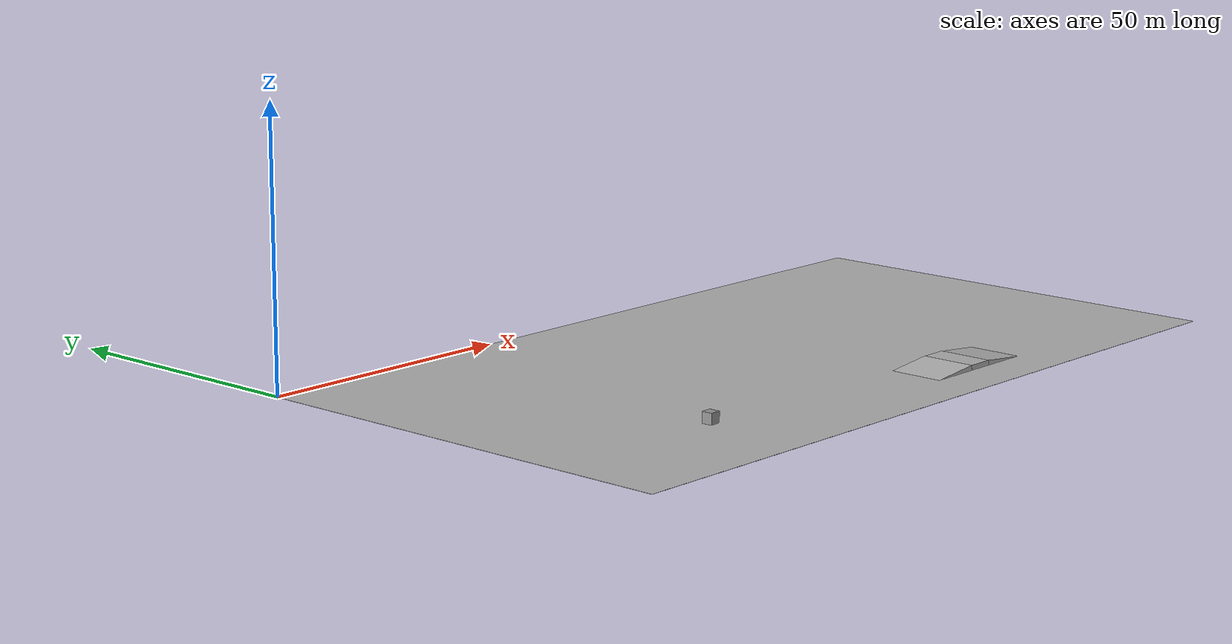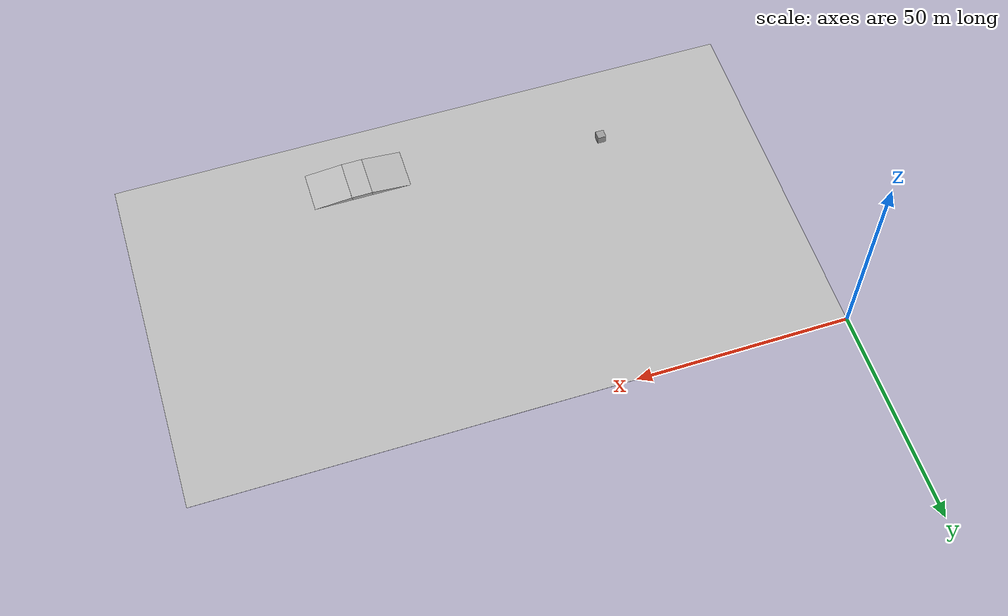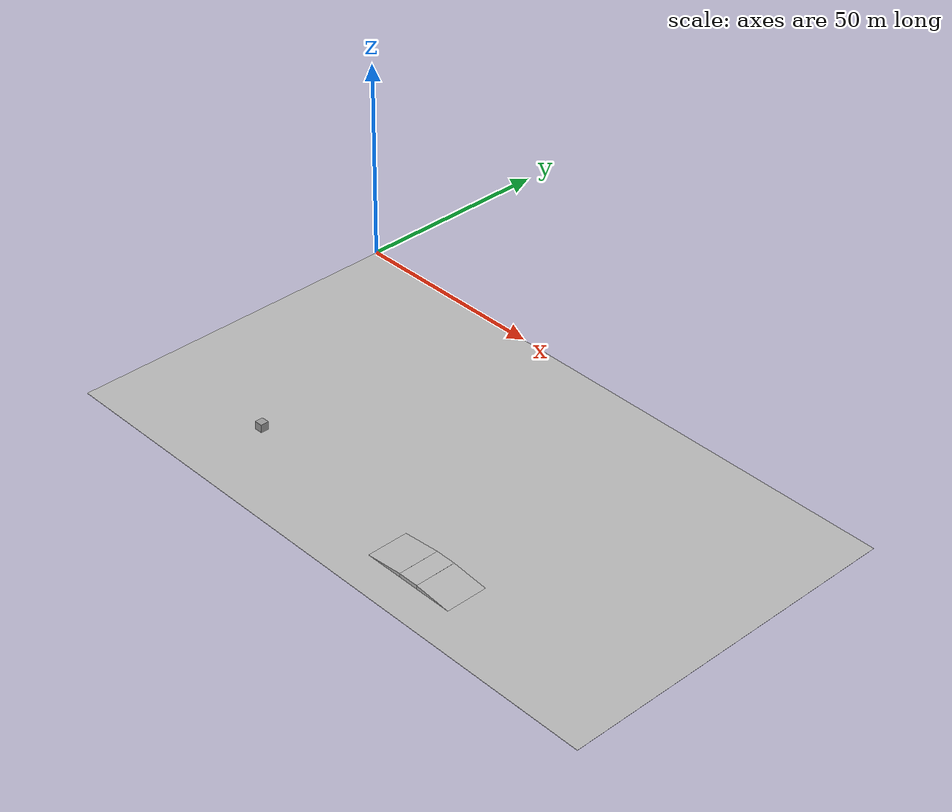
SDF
<sdf version="1.7">
 <world name="default">
  <model name="ground">
   <pose>75 -41.8 0 0 -0 1.57</pose>
   <static>1</static>
   <link name="ground">
    <collision name="ground_coll"><geometry><box><size>83.6 150 0.05</size></box></geometry></collision>
    <visual name="ground_vis">
     <geometry><box><size>83.6 150 0.05</size></box></geometry>
     <material><script><uri>./course.material</uri><name>course</name></script></material>
    </visual>
   </link>
  </model>
  <light name="sun" type="directional">
   <pose>0 0 10 0 -0 0</pose>
   <diffuse>0.8 0.8 0.8 1</diffuse>
   <specular>0.2 0.2 0.2 1</specular>
   <attenuation>
    <range>1000</range>
    <constant>0.9</constant>
    <linear>0.01</linear>
    <quadratic>0.001</quadratic>
   </attenuation>
   <direction>-0.5 0.1 -0.9</direction>
   <spot><inner_angle>0</inner_angle><outer_angle>0</outer_angle><falloff>0</falloff></spot>
  </light>
  <model name="cube">
   <pose>34.9975 -64 1.02486 0 1.57072 0</pose>
   <link name="link">
    <inertial>
     <mass>1</mass>
     <inertia>
      <ixx>0.166667</ixx>
      <ixy>0</ixy>
      <ixz>0</ixz>
      <iyy>0.166667</iyy>
      <iyz>0</iyz>
      <izz>0.166667</izz>
     </inertia>
    </inertial>
    <pose>0 -0 1 0 -0 0</pose>
    <visual name="visual">
     <geometry><box><size>2 2 2</size></box></geometry>
     <material>
      <script><name>Gazebo/Grey</name><uri>file://media/materials/scripts/gazebo.material</uri></script>
      <shader type="pixel"><normal_map>__default__</normal_map></shader>
      <ambient>0.3 0.3 0.3 1</ambient>
      <diffuse>0.7 0.7 0.7 1</diffuse>
      <specular>0.01 0.01 0.01 1</specular>
      <emissive>0 0 0 1</emissive>
     </material>
    </visual>
    <collision name="collision">
     <geometry><box><size>2 2 2</size></box></geometry>
     <surface>
      <friction>
       <ode><mu>0</mu><mu2>0</mu2><fdir1>0 0 0</fdir1><slip1>0</slip1><slip2>0</slip2></ode>
       <torsional>
        <coefficient>1</coefficient>
        <patch_radius>0</patch_radius>
        <surface_radius>0</surface_radius>
        <use_patch_radius>1</use_patch_radius>
        <ode><slip>0</slip></ode>
       </torsional>
      </friction>
      <bounce><restitution_coefficient>0</restitution_coefficient><threshold>1e+06</threshold></bounce>
      <contact>
       <collide_without_contact>0</collide_without_contact>
       <collide_without_contact_bitmask>1</collide_without_contact_bitmask>
       <collide_bitmask>1</collide_bitmask>
       <ode>
        <soft_cfm>0</soft_cfm>
        <soft_erp>0.2</soft_erp>
        <kp>1e+13</kp>
        <kd>1</kd>
        <max_vel>0.01</max_vel>
        <min_depth>0</min_depth>
       </ode>
       <bullet>
        <split_impulse>1</split_impulse>
        <split_impulse_penetration_threshold>-0.01</split_impulse_penetration_threshold>
        <soft_cfm>0</soft_cfm>
        <soft_erp>0.2</soft_erp>
        <kp>1e+13</kp>
        <kd>1</kd>
       </bullet>
      </contact>
     </surface>
    </collision>
   </link>
   <static>0</static>
   <plugin name="cube" filename="libgazebo_ros_planar_move.so">
    <ros>
     <namespace>CUBE</namespace>
     <remapping>cmd_vel:=cmd_demo</remapping>
     <odometryTopic>odom</odometryTopic>
     <odometryFrame>odom</odometryFrame>
     <odometryRate>20.0</odometryRate>
     <robotBaseFrame>base_footprint</robotBaseFrame>
    </ros>
   </plugin>
  </model>
  <model name="uphill">
   <pose>87.4812 -70 -1.33521 0 -0.1 0</pose>
   <static>1</static>
   <link name="link">
    <collision name="collision"><geometry><box><size>10 10 3.60849</size></box></geometry></collision>
    <visual name="visual">
     <geometry><box><size>10 10 3.60849</size></box></geometry>
     <material><script><uri>./uphill.material</uri><name>uphill</name></script></material>
    </visual>
   </link>
  </model>
  <model name="flat">
   <pose>94.735 -70 0.163596 0 -0 0</pose>
   <static>1</static>
   <link name="link">
    <collision name="collision"><geometry><box><size>5 10 1.56794</size></box></geometry></collision>
    <visual name="visual">
     <geometry><box><size>5 10 1.56794</size></box></geometry>
     <material><script><uri>./hill.material</uri><name>hill</name></script></material>
    </visual>
   </link>
  </model>
  <model name="downhill">
   <pose>101.956 -70 -1.38803 0 0.1 0</pose>
   <static>1</static>
   <link name="link">
    <collision name="collision"><geometry><box><size>10 10 3.65658</size></box></geometry></collision>
    <visual name="visual">
     <geometry><box><size>10 10 3.65658</size></box></geometry>
     <material><script><uri>./hill.material</uri><name>hill</name></script></material>
    </visual>
   </link>
  </model>
  <gravity>0 0 -9.8</gravity>
  <magnetic_field>6e-06 2.3e-05 -4.2e-05</magnetic_field>
  <atmosphere type="adiabatic"/>
  <physics type="ode">
   <max_step_size>0.001</max_step_size>
   <real_time_factor>1</real_time_factor>
   <real_time_update_rate>1000</real_time_update_rate>
  </physics>
  <scene><ambient>0.4 0.4 0.4 1</ambient><background>0.7 0.7 0.7 1</background><shadows>1</shadows></scene>
  <spherical_coordinates>
   <surface_model>EARTH_WGS84</surface_model>
   <latitude_deg>0</latitude_deg>
   <longitude_deg>0</longitude_deg>
   <elevation>0</elevation>
   <heading_deg>0</heading_deg>
  </spherical_coordinates>
 </world>
</sdf>
